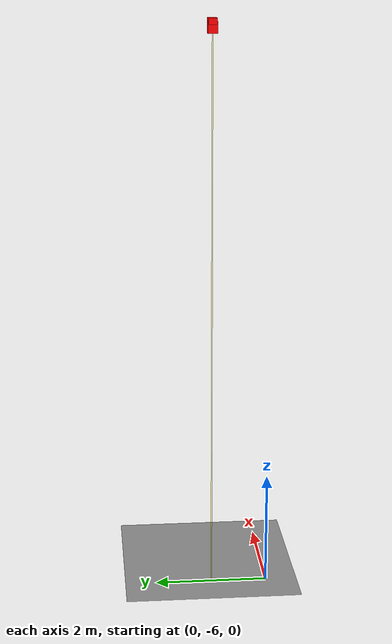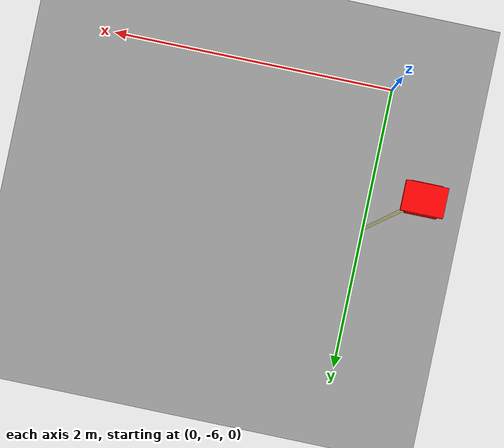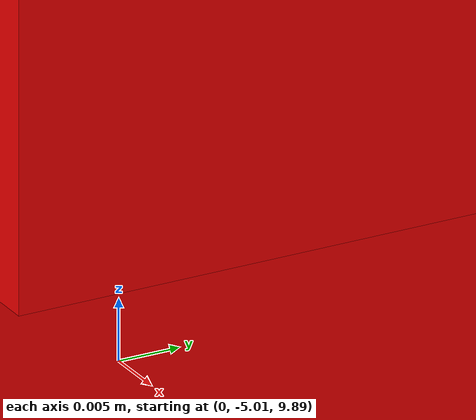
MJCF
<!-- world_spot.xml – spotlight only, no actor -->
<mujoco model="world">

  <asset>
    <material name="mat_floor" rgba="0.6 0.6 0.6 1"/>
    <material name="mat_spot"  rgba="1   0   0   1"/>
  </asset>

  <visual><map znear="0.01"/></visual>

  <worldbody>

    <camera name="main_cam" pos="0 -15 12" euler="25 0 0"/>
    <geom   type="plane"   pos="0 0 0" size="14 14 0.1" material="mat_floor"/>

    <!-- ───── Robotic spotlight (unchanged geometry) ───── -->
    <body name="fixture_base" pos="0 -5 10" euler="180 0 0">
      <geom name="base" type="box" size="0.10575 0.0755 0.05" material="mat_spot"/>

      <joint name="pan" type="hinge" axis="0 0 1" range="-270 270"
             limited="true" frictionloss="0.8" damping="0.8"/>

      <body name="fixture_head" pos="0 0 0.10" euler="180 0 0">
        <inertial pos="0 0 0" mass="21" diaginertia="0.03 0.03 0.02"/>
        <joint name="tilt" type="hinge" axis="0 1 0" range="-135 135"
               limited="true" frictionloss="0.8" damping="0.8"/>

        <geom name="head_geom" type="box"
              pos="0 0 0" size="0.08 0.08 0.10" density="80" material="mat_spot"/>

        <!-- Beam capsule: radius will be changed from Python -->
        <geom name="spot_beam" type="capsule"
              fromto="0 0 0   0 0 -10"
              size="0.01"
              rgba="1 1 0 0.3"
              contype="0" conaffinity="0"/>

        <site name="head_site" type="sphere" pos="0 0 0" size="0.01" rgba="0 1 0 1"/>
      </body>
    </body>

  </worldbody>

  <actuator>
    <motor name="pan"  joint="pan"  gear="8"/>
    <motor name="tilt" joint="tilt" gear="8"/>
  </actuator>
</mujoco>
